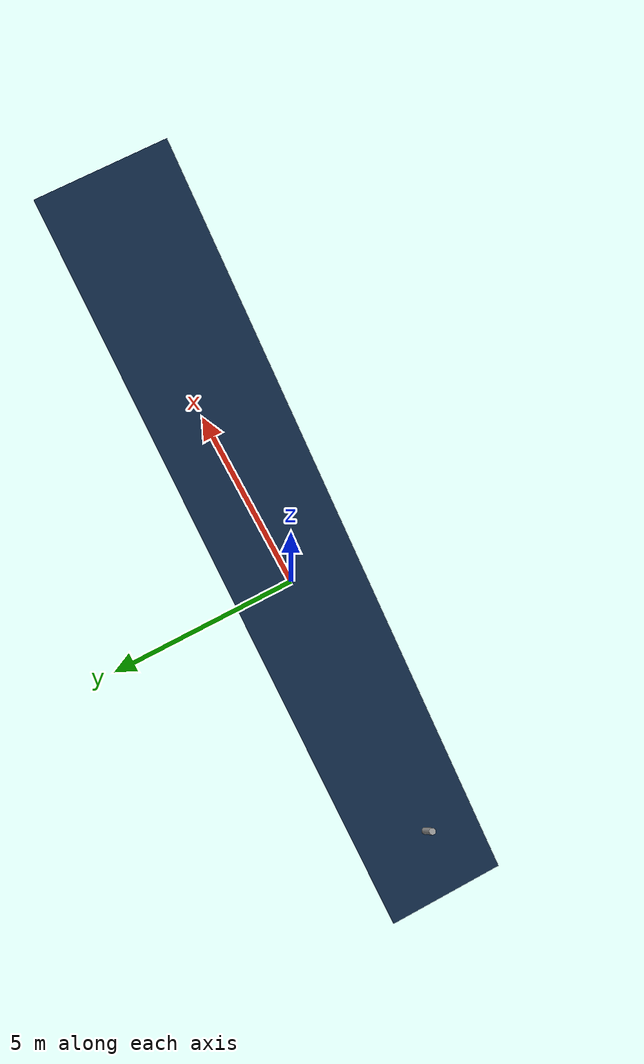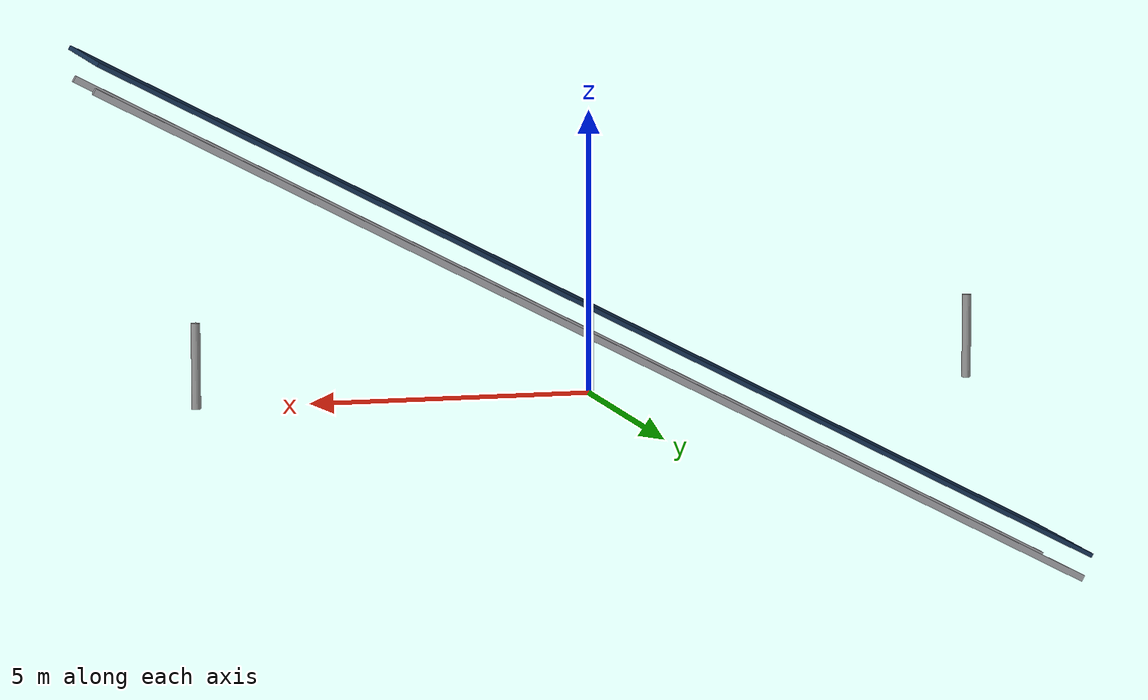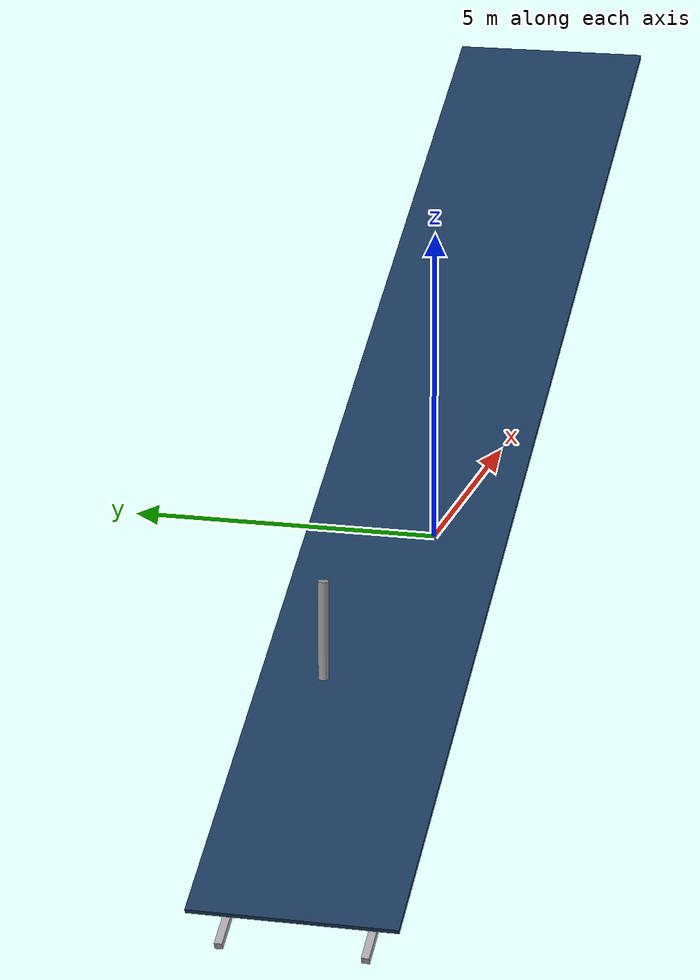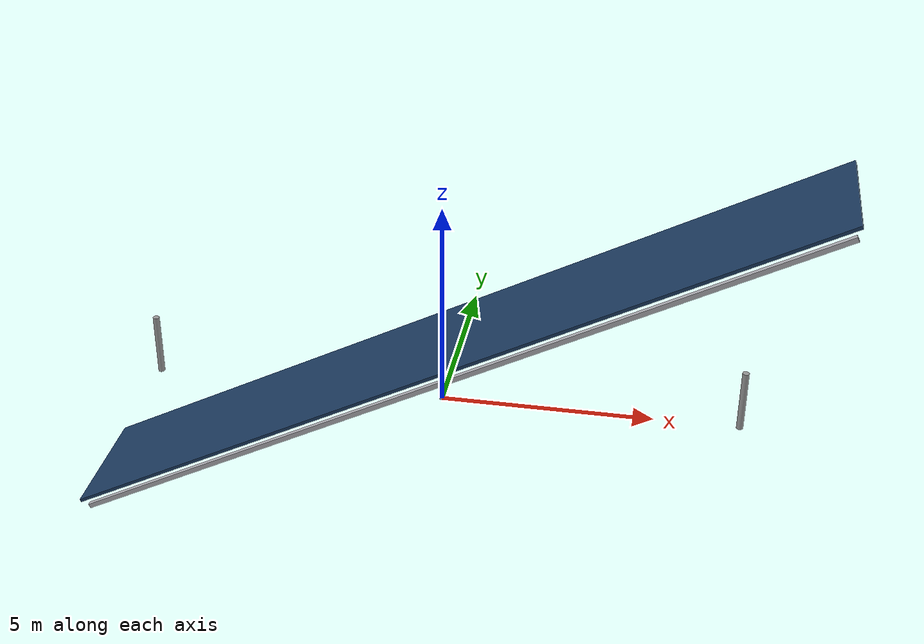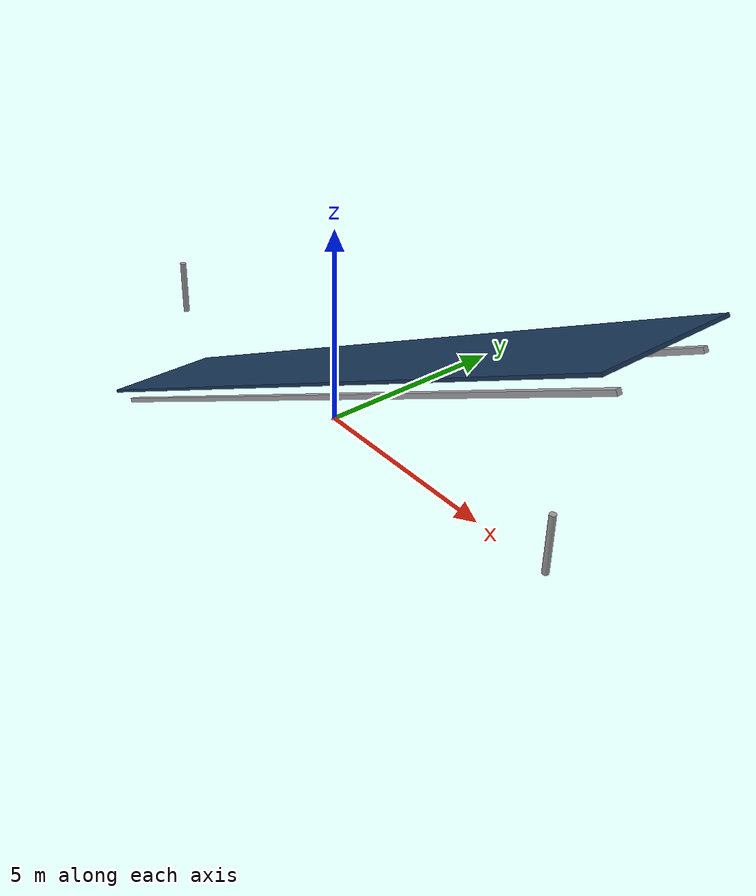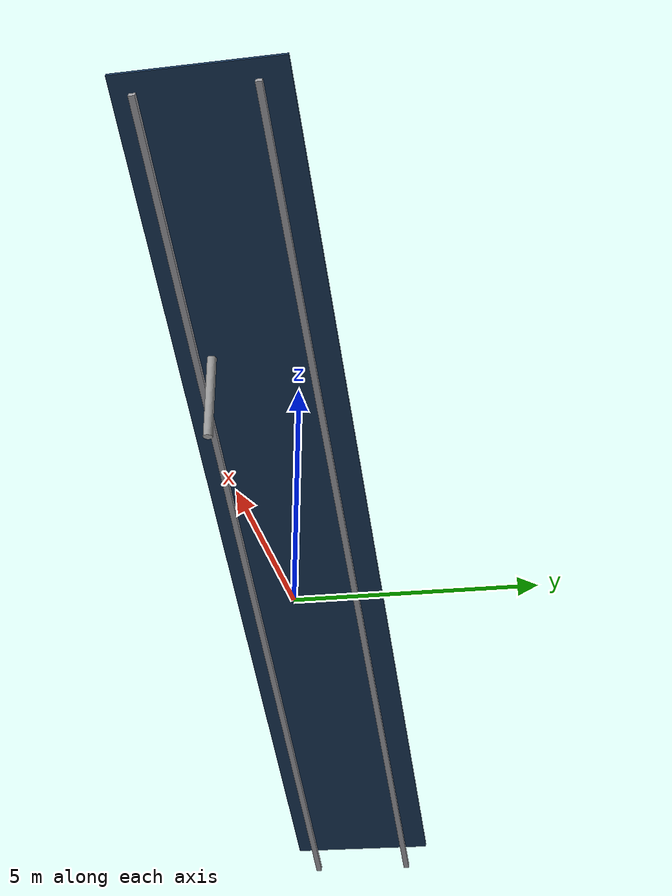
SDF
<?xml version="1.0" ?>
<sdf version="1.9">
  <model name="solar_panel_row">
    <static>true</static>
    <link name="row_link">
      <collision name="frame_collision">
        <pose>0 0 0.6 0 0 0</pose>
        <geometry>
          <box>
            <size>20 2.4 1.2</size>
          </box>
        </geometry>
      </collision>

      <visual name="panel_surface">
        <pose>0 0 1.55 0 -0.48 0</pose>
        <geometry>
          <box>
            <size>20 3.2 0.08</size>
          </box>
        </geometry>
        <material>
          <ambient>0.08 0.16 0.26 1</ambient>
          <diffuse>0.10 0.22 0.36 1</diffuse>
          <specular>0.18 0.18 0.18 1</specular>
        </material>
      </visual>

      <visual name="frame_beam_left">
        <pose>0 -1.1 1.05 0 -0.48 0</pose>
        <geometry>
          <box>
            <size>20 0.12 0.12</size>
          </box>
        </geometry>
        <material>
          <ambient>0.55 0.55 0.57 1</ambient>
          <diffuse>0.66 0.66 0.68 1</diffuse>
        </material>
      </visual>

      <visual name="frame_beam_right">
        <pose>0 1.1 1.05 0 -0.48 0</pose>
        <geometry>
          <box>
            <size>20 0.12 0.12</size>
          </box>
        </geometry>
        <material>
          <ambient>0.55 0.55 0.57 1</ambient>
          <diffuse>0.66 0.66 0.68 1</diffuse>
        </material>
      </visual>

      <visual name="support_1">
        <pose>-7 0 0.75 0 0 0</pose>
        <geometry>
          <cylinder>
            <radius>0.08</radius>
            <length>1.5</length>
          </cylinder>
        </geometry>
        <material>
          <ambient>0.50 0.50 0.50 1</ambient>
          <diffuse>0.60 0.60 0.60 1</diffuse>
        </material>
      </visual>

      <visual name="support_2">
        <pose>0 0 0.75 0 0 0</pose>
        <geometry>
          <cylinder>
            <radius>0.08</radius>
            <length>1.5</length>
          </cylinder>
        </geometry>
        <material>
          <ambient>0.50 0.50 0.50 1</ambient>
          <diffuse>0.60 0.60 0.60 1</diffuse>
        </material>
      </visual>

      <visual name="support_3">
        <pose>7 0 0.75 0 0 0</pose>
        <geometry>
          <cylinder>
            <radius>0.08</radius>
            <length>1.5</length>
          </cylinder>
        </geometry>
        <material>
          <ambient>0.50 0.50 0.50 1</ambient>
          <diffuse>0.60 0.60 0.60 1</diffuse>
        </material>
      </visual>
    </link>
  </model>
</sdf>
